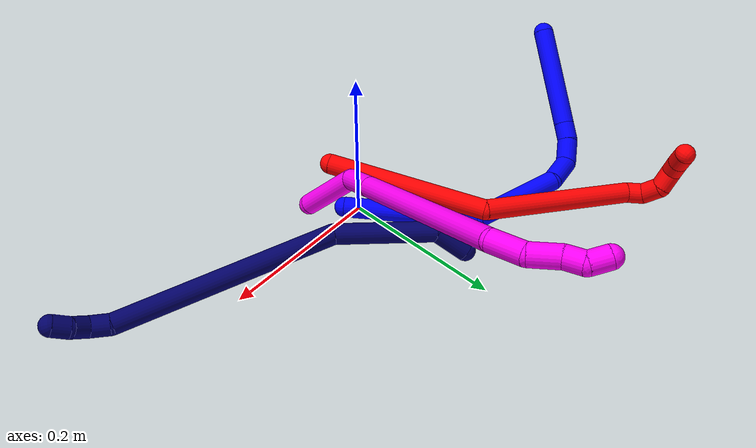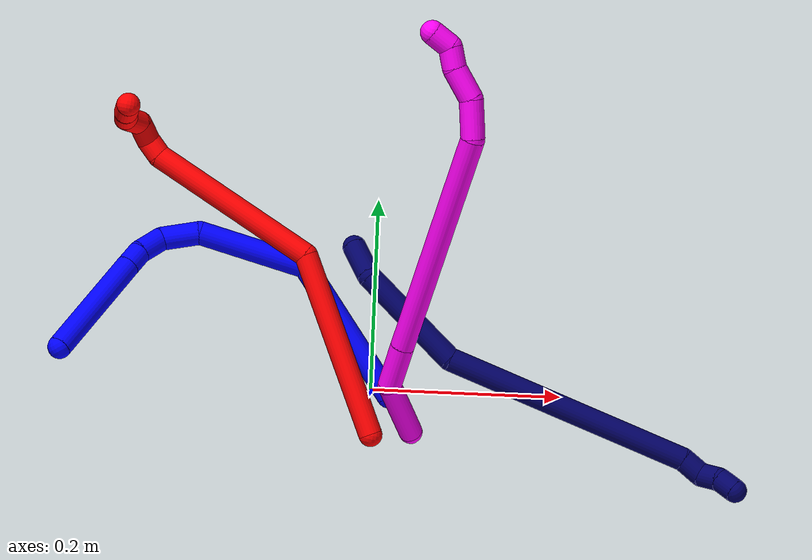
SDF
<sdf version="1.7">
 <world name="default">
  <model name="photoneo_s_sensor">
   <static>1</static>
   <pose>0 0 2 1.57079 1.57079 3.14159</pose>
   <link name="link">
    <inertial><mass>0.1</mass></inertial>
    <sensor name="sensor" type="depth">
     <update_rate>30</update_rate>
     <camera>
      <horizontal_fov>1.22</horizontal_fov>
      <image><width>1920</width><height>1200</height><format>B8G8R8</format></image>
      <clip><near>0.1</near><far>4</far></clip>
      <depth_camera><output>points</output></depth_camera>
     </camera>
     <plugin name="camera_plugin" filename="libgazebo_ros_depth_camera.so">
      <baseline>0.2</baseline>
      <alwaysOn>1</alwaysOn>
      <updateRate>0.0</updateRate>
      <cameraName>camera_ir</cameraName>
      <imageTopicName>/camera/color/image_raw</imageTopicName>
      <cameraInfoTopicName>/camera/color/camera_info</cameraInfoTopicName>
      <depthImageTopicName>/camera/depth/image_raw</depthImageTopicName>
      <depthImageCameraInfoTopicName>/camera/depth/camera_info</depthImageCameraInfoTopicName>
      <pointCloudTopicName>/camera/depth/points</pointCloudTopicName>
      <frameName>fr_optical</frameName>
      <pointCloudCutoff>0.1</pointCloudCutoff>
      <pointCloudCutoffMax>2.0</pointCloudCutoffMax>
      <distortionK1>0</distortionK1>
      <distortionK2>0</distortionK2>
      <distortionK3>0</distortionK3>
      <distortionT1>0</distortionT1>
      <distortionT2>0</distortionT2>
      <CxPrime>0</CxPrime>
      <Cx>0</Cx>
      <Cy>0</Cy>
      <focalLength>0</focalLength>
      <hackBaseline>0</hackBaseline>
     </plugin>
    </sensor>
   </link>
  </model>
  <model name="bin">
   <static>1</static>
   <link name="bottom">
    <collision name="collision-bottom">
     <pose>0 0 -0.01 0 -0 0</pose>
     <geometry><box><size>0.8 0.6 0.02</size></box></geometry>
     <surface>
      <friction><ode><mu>100</mu><mu2>100</mu2></ode></friction>
      <contact><collide_bitmask>65535</collide_bitmask></contact>
     </surface>
    </collision>
   </link>
   <link name="west_wall">
    <collision name="collision-west_wall">
     <pose>-0.41 0 0.1 0 -0 0</pose>
     <geometry><box><size>0.02 0.6 0.2</size></box></geometry>
     <surface>
      <friction><ode><mu>100</mu><mu2>100</mu2></ode></friction>
      <contact><collide_bitmask>65535</collide_bitmask></contact>
     </surface>
    </collision>
   </link>
   <link name="east_wall">
    <collision name="collision-east_wall">
     <pose>0.41 0 0.1 0 -0 0</pose>
     <geometry><box><size>0.02 0.6 0.2</size></box></geometry>
     <surface>
      <friction><ode><mu>100</mu><mu2>100</mu2></ode></friction>
      <contact><collide_bitmask>65535</collide_bitmask></contact>
     </surface>
    </collision>
   </link>
   <link name="south_wall">
    <collision name="collision-south_wall">
     <pose>0 -0.31 0.1 0 -0 0</pose>
     <geometry><box><size>0.8 0.02 0.2</size></box></geometry>
     <surface>
      <friction><ode><mu>100</mu><mu2>100</mu2></ode></friction>
      <contact><collide_bitmask>65535</collide_bitmask></contact>
     </surface>
    </collision>
   </link>
   <link name="north_wall">
    <collision name="collision-north_wall">
     <pose>0 0.31 0.1 0 -0 0</pose>
     <geometry><box><size>0.8 0.02 0.2</size></box></geometry>
     <surface>
      <friction><ode><mu>100</mu><mu2>100</mu2></ode></friction>
      <contact><collide_bitmask>65535</collide_bitmask></contact>
     </surface>
    </collision>
   </link>
  </model>
  <model name="1">
   <static>0</static>
   <link name="1">
    <collision name="collision-cylinder-e_1_1_4">
     <pose>-0.004996 0.004509 0.081183 -0.055489 -0.061371 0.001704</pose>
     <geometry><cylinder><radius>0.0125</radius><length>0.162922</length></cylinder></geometry>
     <surface>
      <friction><ode><mu>1.16</mu><mu2>1.16</mu2><slip1>0</slip1><slip2>0</slip2></ode></friction>
      <contact><ode><kp>1e+06</kp><kd>1</kd><max_vel>0</max_vel><min_depth>0.001</min_depth></ode></contact>
     </surface>
    </collision>
    <visual name="visual-cylinder-e_1_1_4">
     <pose>-0.004996 0.004509 0.081183 -0.055489 -0.061371 0.001704</pose>
     <geometry><cylinder><radius>0.0125</radius><length>0.162922</length></cylinder></geometry>
     <material><ambient>0 0 1 1</ambient></material>
    </visual>
    <collision name="collision-cylinder-e_2_4_5">
     <pose>-0.048579 0.020546 0.204301 -0.268254 -0.725713 0.102373</pose>
     <geometry><cylinder><radius>0.0125</radius><length>0.116283</length></cylinder></geometry>
     <surface>
      <friction><ode><mu>1.16</mu><mu2>1.16</mu2><slip1>0</slip1><slip2>0</slip2></ode></friction>
      <contact><ode><kp>1e+06</kp><kd>1</kd><max_vel>0</max_vel><min_depth>0.001</min_depth></ode></contact>
     </surface>
    </collision>
    <visual name="visual-cylinder-e_2_4_5">
     <pose>-0.048579 0.020546 0.204301 -0.268254 -0.725713 0.102373</pose>
     <geometry><cylinder><radius>0.0125</radius><length>0.116283</length></cylinder></geometry>
     <material><ambient>0 0 1 1</ambient></material>
    </visual>
    <collision name="collision-cylinder-e_3_5_6">
     <pose>-0.105195 0.039379 0.25321 -0.808663 -1.06021 0.491422</pose>
     <geometry><cylinder><radius>0.0125</radius><length>0.041331</length></cylinder></geometry>
     <surface>
      <friction><ode><mu>1.16</mu><mu2>1.16</mu2><slip1>0</slip1><slip2>0</slip2></ode></friction>
      <contact><ode><kp>1e+06</kp><kd>1</kd><max_vel>0</max_vel><min_depth>0.001</min_depth></ode></contact>
     </surface>
    </collision>
    <visual name="visual-cylinder-e_3_5_6">
     <pose>-0.105195 0.039379 0.25321 -0.808663 -1.06021 0.491422</pose>
     <geometry><cylinder><radius>0.0125</radius><length>0.041331</length></cylinder></geometry>
     <material><ambient>0 0 1 1</ambient></material>
    </visual>
    <collision name="collision-cylinder-e_4_6_7">
     <pose>-0.138009 0.042701 0.259517 1.73658 -1.30417 -1.46768</pose>
     <geometry><cylinder><radius>0.0125</radius><length>0.030651</length></cylinder></geometry>
     <surface>
      <friction><ode><mu>1.16</mu><mu2>1.16</mu2><slip1>0</slip1><slip2>0</slip2></ode></friction>
      <contact><ode><kp>1e+06</kp><kd>1</kd><max_vel>0</max_vel><min_depth>0.001</min_depth></ode></contact>
     </surface>
    </collision>
    <visual name="visual-cylinder-e_4_6_7">
     <pose>-0.138009 0.042701 0.259517 1.73658 -1.30417 -1.46768</pose>
     <geometry><cylinder><radius>0.0125</radius><length>0.030651</length></cylinder></geometry>
     <material><ambient>0 0 1 1</ambient></material>
    </visual>
    <collision name="collision-cylinder-e_5_7_8">
     <pose>-0.162678 0.035785 0.255492 2.4236 -1.14702 -2.089</pose>
     <geometry><cylinder><radius>0.0125</radius><length>0.021689</length></cylinder></geometry>
     <surface>
      <friction><ode><mu>1.16</mu><mu2>1.16</mu2><slip1>0</slip1><slip2>0</slip2></ode></friction>
      <contact><ode><kp>1e+06</kp><kd>1</kd><max_vel>0</max_vel><min_depth>0.001</min_depth></ode></contact>
     </surface>
    </collision>
    <visual name="visual-cylinder-e_5_7_8">
     <pose>-0.162678 0.035785 0.255492 2.4236 -1.14702 -2.089</pose>
     <geometry><cylinder><radius>0.0125</radius><length>0.021689</length></cylinder></geometry>
     <material><ambient>0 0 1 1</ambient></material>
    </visual>
    <collision name="collision-cylinder-e_6_8_2">
     <pose>-0.229732 0.013565 0.232137 2.37428 -1.11844 -1.99594</pose>
     <geometry><cylinder><radius>0.0125</radius><length>0.127124</length></cylinder></geometry>
     <surface>
      <friction><ode><mu>1.16</mu><mu2>1.16</mu2><slip1>0</slip1><slip2>0</slip2></ode></friction>
      <contact><ode><kp>1e+06</kp><kd>1</kd><max_vel>0</max_vel><min_depth>0.001</min_depth></ode></contact>
     </surface>
    </collision>
    <visual name="visual-cylinder-e_6_8_2">
     <pose>-0.229732 0.013565 0.232137 2.37428 -1.11844 -1.99594</pose>
     <geometry><cylinder><radius>0.0125</radius><length>0.127124</length></cylinder></geometry>
     <material><ambient>0 0 1 1</ambient></material>
    </visual>
    <collision name="collision-sphere-2">
     <pose>-0.286901 -0.005722 0.21214 0 -0 0</pose>
     <geometry><sphere><radius>0.0125</radius></sphere></geometry>
     <surface>
      <friction><ode><mu>1.16</mu><mu2>1.16</mu2><slip1>0</slip1><slip2>0</slip2></ode></friction>
      <contact><ode><kp>1e+06</kp><kd>1</kd><max_vel>0</max_vel><min_depth>0.001</min_depth></ode></contact>
     </surface>
    </collision>
    <visual name="visual-sphere-2">
     <pose>-0.286901 -0.005722 0.21214 0 -0 0</pose>
     <geometry><sphere><radius>0.0125</radius></sphere></geometry>
     <material><ambient>0 0 1 1</ambient></material>
    </visual>
    <collision name="collision-sphere-4">
     <pose>-0.009992 0.009019 0.162365 0 -0 0</pose>
     <geometry><sphere><radius>0.0125</radius></sphere></geometry>
     <surface>
      <friction><ode><mu>1.16</mu><mu2>1.16</mu2><slip1>0</slip1><slip2>0</slip2></ode></friction>
      <contact><ode><kp>1e+06</kp><kd>1</kd><max_vel>0</max_vel><min_depth>0.001</min_depth></ode></contact>
     </surface>
    </collision>
    <visual name="visual-sphere-4">
     <pose>-0.009992 0.009019 0.162365 0 -0 0</pose>
     <geometry><sphere><radius>0.0125</radius></sphere></geometry>
     <material><ambient>0 0 1 1</ambient></material>
    </visual>
    <collision name="collision-sphere-1">
     <geometry><sphere><radius>0.0125</radius></sphere></geometry>
     <surface>
      <friction><ode><mu>1.16</mu><mu2>1.16</mu2><slip1>0</slip1><slip2>0</slip2></ode></friction>
      <contact><ode><kp>1e+06</kp><kd>1</kd><max_vel>0</max_vel><min_depth>0.001</min_depth></ode></contact>
     </surface>
    </collision>
    <visual name="visual-sphere-1">
     <geometry><sphere><radius>0.0125</radius></sphere></geometry>
     <material><ambient>0 0 1 1</ambient></material>
    </visual>
    <collision name="collision-sphere-8">
     <pose>-0.172564 0.032851 0.252133 0 -0 0</pose>
     <geometry><sphere><radius>0.0125</radius></sphere></geometry>
     <surface>
      <friction><ode><mu>1.16</mu><mu2>1.16</mu2><slip1>0</slip1><slip2>0</slip2></ode></friction>
      <contact><ode><kp>1e+06</kp><kd>1</kd><max_vel>0</max_vel><min_depth>0.001</min_depth></ode></contact>
     </surface>
    </collision>
    <visual name="visual-sphere-8">
     <pose>-0.172564 0.032851 0.252133 0 -0 0</pose>
     <geometry><sphere><radius>0.0125</radius></sphere></geometry>
     <material><ambient>0 0 1 1</ambient></material>
    </visual>
    <collision name="collision-sphere-5">
     <pose>-0.087166 0.032073 0.246237 0 -0 0</pose>
     <geometry><sphere><radius>0.0125</radius></sphere></geometry>
     <surface>
      <friction><ode><mu>1.16</mu><mu2>1.16</mu2><slip1>0</slip1><slip2>0</slip2></ode></friction>
      <contact><ode><kp>1e+06</kp><kd>1</kd><max_vel>0</max_vel><min_depth>0.001</min_depth></ode></contact>
     </surface>
    </collision>
    <visual name="visual-sphere-5">
     <pose>-0.087166 0.032073 0.246237 0 -0 0</pose>
     <geometry><sphere><radius>0.0125</radius></sphere></geometry>
     <material><ambient>0 0 1 1</ambient></material>
    </visual>
    <collision name="collision-sphere-6">
     <pose>-0.123225 0.046684 0.260183 0 -0 0</pose>
     <geometry><sphere><radius>0.0125</radius></sphere></geometry>
     <surface>
      <friction><ode><mu>1.16</mu><mu2>1.16</mu2><slip1>0</slip1><slip2>0</slip2></ode></friction>
      <contact><ode><kp>1e+06</kp><kd>1</kd><max_vel>0</max_vel><min_depth>0.001</min_depth></ode></contact>
     </surface>
    </collision>
    <visual name="visual-sphere-6">
     <pose>-0.123225 0.046684 0.260183 0 -0 0</pose>
     <geometry><sphere><radius>0.0125</radius></sphere></geometry>
     <material><ambient>0 0 1 1</ambient></material>
    </visual>
    <collision name="collision-sphere-7">
     <pose>-0.152793 0.038719 0.25885 0 -0 0</pose>
     <geometry><sphere><radius>0.0125</radius></sphere></geometry>
     <surface>
      <friction><ode><mu>1.16</mu><mu2>1.16</mu2><slip1>0</slip1><slip2>0</slip2></ode></friction>
      <contact><ode><kp>1e+06</kp><kd>1</kd><max_vel>0</max_vel><min_depth>0.001</min_depth></ode></contact>
     </surface>
    </collision>
    <visual name="visual-sphere-7">
     <pose>-0.152793 0.038719 0.25885 0 -0 0</pose>
     <geometry><sphere><radius>0.0125</radius></sphere></geometry>
     <material><ambient>0 0 1 1</ambient></material>
    </visual>
    <inertial>
     <pose>-0.095547 0.017122 0.180909 0 -0 0</pose>
     <mass>0.5</mass>
     <inertia>
      <ixx>0.000357</ixx>
      <ixy>0</ixy>
      <ixz>0</ixz>
      <iyy>0.000603</iyy>
      <iyz>0</iyz>
      <izz>0.000304</izz>
     </inertia>
    </inertial>
   </link>
   <pose>0.018815 -0.005978 0.011493 -1.53435 0.300577 0.547363</pose>
  </model>
  <model name="2">
   <static>0</static>
   <link name="2">
    <collision name="collision-cylinder-e_1_1_4">
     <pose>-0.027704 0.045002 0.084976 -0.487036 -0.280519 0.070126</pose>
     <geometry><cylinder><radius>0.0125</radius><length>0.200136</length></cylinder></geometry>
     <surface>
      <friction><ode><mu>1.16</mu><mu2>1.16</mu2><slip1>0</slip1><slip2>0</slip2></ode></friction>
      <contact><ode><kp>1e+06</kp><kd>1</kd><max_vel>0</max_vel><min_depth>0.001</min_depth></ode></contact>
     </surface>
    </collision>
    <visual name="visual-cylinder-e_1_1_4">
     <pose>-0.027704 0.045002 0.084976 -0.487036 -0.280519 0.070126</pose>
     <geometry><cylinder><radius>0.0125</radius><length>0.200136</length></cylinder></geometry>
     <material><ambient>1 0 0 1</ambient></material>
    </visual>
    <collision name="collision-cylinder-e_2_4_5">
     <pose>-0.101498 0.164231 0.205125 -1.12828 -0.511342 0.327814</pose>
     <geometry><cylinder><radius>0.0125</radius><length>0.188374</length></cylinder></geometry>
     <surface>
      <friction><ode><mu>1.16</mu><mu2>1.16</mu2><slip1>0</slip1><slip2>0</slip2></ode></friction>
      <contact><ode><kp>1e+06</kp><kd>1</kd><max_vel>0</max_vel><min_depth>0.001</min_depth></ode></contact>
     </surface>
    </collision>
    <visual name="visual-cylinder-e_2_4_5">
     <pose>-0.101498 0.164231 0.205125 -1.12828 -0.511342 0.327814</pose>
     <geometry><cylinder><radius>0.0125</radius><length>0.188374</length></cylinder></geometry>
     <material><ambient>1 0 0 1</ambient></material>
    </visual>
    <collision name="collision-cylinder-e_3_5_6">
     <pose>-0.152165 0.244524 0.247315 -0.712796 -0.458345 0.173257</pose>
     <geometry><cylinder><radius>0.0125</radius><length>0.020685</length></cylinder></geometry>
     <surface>
      <friction><ode><mu>1.16</mu><mu2>1.16</mu2><slip1>0</slip1><slip2>0</slip2></ode></friction>
      <contact><ode><kp>1e+06</kp><kd>1</kd><max_vel>0</max_vel><min_depth>0.001</min_depth></ode></contact>
     </surface>
    </collision>
    <visual name="visual-cylinder-e_3_5_6">
     <pose>-0.152165 0.244524 0.247315 -0.712796 -0.458345 0.173257</pose>
     <geometry><cylinder><radius>0.0125</radius><length>0.020685</length></cylinder></geometry>
     <material><ambient>1 0 0 1</ambient></material>
    </visual>
    <collision name="collision-cylinder-e_4_6_7">
     <pose>-0.166487 0.249707 0.262303 0.110255 -0.882244 -0.052098</pose>
     <geometry><cylinder><radius>0.0125</radius><length>0.025244</length></cylinder></geometry>
     <surface>
      <friction><ode><mu>1.16</mu><mu2>1.16</mu2><slip1>0</slip1><slip2>0</slip2></ode></friction>
      <contact><ode><kp>1e+06</kp><kd>1</kd><max_vel>0</max_vel><min_depth>0.001</min_depth></ode></contact>
     </surface>
    </collision>
    <visual name="visual-cylinder-e_4_6_7">
     <pose>-0.166487 0.249707 0.262303 0.110255 -0.882244 -0.052098</pose>
     <geometry><cylinder><radius>0.0125</radius><length>0.025244</length></cylinder></geometry>
     <material><ambient>1 0 0 1</ambient></material>
    </visual>
    <collision name="collision-cylinder-e_5_7_8">
     <pose>-0.188007 0.248131 0.270973 0.782014 -1.48737 -0.724895</pose>
     <geometry><cylinder><radius>0.0125</radius><length>0.02363</length></cylinder></geometry>
     <surface>
      <friction><ode><mu>1.16</mu><mu2>1.16</mu2><slip1>0</slip1><slip2>0</slip2></ode></friction>
      <contact><ode><kp>1e+06</kp><kd>1</kd><max_vel>0</max_vel><min_depth>0.001</min_depth></ode></contact>
     </surface>
    </collision>
    <visual name="visual-cylinder-e_5_7_8">
     <pose>-0.188007 0.248131 0.270973 0.782014 -1.48737 -0.724895</pose>
     <geometry><cylinder><radius>0.0125</radius><length>0.02363</length></cylinder></geometry>
     <material><ambient>1 0 0 1</ambient></material>
    </visual>
    <collision name="collision-cylinder-e_6_8_9">
     <pose>-0.207148 0.241303 0.274686 1.11409 -0.822869 -0.530721</pose>
     <geometry><cylinder><radius>0.0125</radius><length>0.020097</length></cylinder></geometry>
     <surface>
      <friction><ode><mu>1.16</mu><mu2>1.16</mu2><slip1>0</slip1><slip2>0</slip2></ode></friction>
      <contact><ode><kp>1e+06</kp><kd>1</kd><max_vel>0</max_vel><min_depth>0.001</min_depth></ode></contact>
     </surface>
    </collision>
    <visual name="visual-cylinder-e_6_8_9">
     <pose>-0.207148 0.241303 0.274686 1.11409 -0.822869 -0.530721</pose>
     <geometry><cylinder><radius>0.0125</radius><length>0.020097</length></cylinder></geometry>
     <material><ambient>1 0 0 1</ambient></material>
    </visual>
    <collision name="collision-cylinder-e_7_9_2">
     <pose>-0.221535 0.22785 0.281741 1.06626 -0.698459 -0.423357</pose>
     <geometry><cylinder><radius>0.0125</radius><length>0.021835</length></cylinder></geometry>
     <surface>
      <friction><ode><mu>1.16</mu><mu2>1.16</mu2><slip1>0</slip1><slip2>0</slip2></ode></friction>
      <contact><ode><kp>1e+06</kp><kd>1</kd><max_vel>0</max_vel><min_depth>0.001</min_depth></ode></contact>
     </surface>
    </collision>
    <visual name="visual-cylinder-e_7_9_2">
     <pose>-0.221535 0.22785 0.281741 1.06626 -0.698459 -0.423357</pose>
     <geometry><cylinder><radius>0.0125</radius><length>0.021835</length></cylinder></geometry>
     <material><ambient>1 0 0 1</ambient></material>
    </visual>
    <collision name="collision-sphere-2">
     <pose>-0.228555 0.220531 0.285783 0 -0 0</pose>
     <geometry><sphere><radius>0.0125</radius></sphere></geometry>
     <surface>
      <friction><ode><mu>1.16</mu><mu2>1.16</mu2><slip1>0</slip1><slip2>0</slip2></ode></friction>
      <contact><ode><kp>1e+06</kp><kd>1</kd><max_vel>0</max_vel><min_depth>0.001</min_depth></ode></contact>
     </surface>
    </collision>
    <visual name="visual-sphere-2">
     <pose>-0.228555 0.220531 0.285783 0 -0 0</pose>
     <geometry><sphere><radius>0.0125</radius></sphere></geometry>
     <material><ambient>1 0 0 1</ambient></material>
    </visual>
    <collision name="collision-sphere-9">
     <pose>-0.214515 0.235169 0.2777 0 -0 0</pose>
     <geometry><sphere><radius>0.0125</radius></sphere></geometry>
     <surface>
      <friction><ode><mu>1.16</mu><mu2>1.16</mu2><slip1>0</slip1><slip2>0</slip2></ode></friction>
      <contact><ode><kp>1e+06</kp><kd>1</kd><max_vel>0</max_vel><min_depth>0.001</min_depth></ode></contact>
     </surface>
    </collision>
    <visual name="visual-sphere-9">
     <pose>-0.214515 0.235169 0.2777 0 -0 0</pose>
     <geometry><sphere><radius>0.0125</radius></sphere></geometry>
     <material><ambient>1 0 0 1</ambient></material>
    </visual>
    <collision name="collision-sphere-4">
     <pose>-0.055408 0.090004 0.169951 0 -0 0</pose>
     <geometry><sphere><radius>0.0125</radius></sphere></geometry>
     <surface>
      <friction><ode><mu>1.16</mu><mu2>1.16</mu2><slip1>0</slip1><slip2>0</slip2></ode></friction>
      <contact><ode><kp>1e+06</kp><kd>1</kd><max_vel>0</max_vel><min_depth>0.001</min_depth></ode></contact>
     </surface>
    </collision>
    <visual name="visual-sphere-4">
     <pose>-0.055408 0.090004 0.169951 0 -0 0</pose>
     <geometry><sphere><radius>0.0125</radius></sphere></geometry>
     <material><ambient>1 0 0 1</ambient></material>
    </visual>
    <collision name="collision-sphere-1">
     <geometry><sphere><radius>0.0125</radius></sphere></geometry>
     <surface>
      <friction><ode><mu>1.16</mu><mu2>1.16</mu2><slip1>0</slip1><slip2>0</slip2></ode></friction>
      <contact><ode><kp>1e+06</kp><kd>1</kd><max_vel>0</max_vel><min_depth>0.001</min_depth></ode></contact>
     </surface>
    </collision>
    <visual name="visual-sphere-1">
     <geometry><sphere><radius>0.0125</radius></sphere></geometry>
     <material><ambient>1 0 0 1</ambient></material>
    </visual>
    <collision name="collision-sphere-8">
     <pose>-0.199781 0.247437 0.271672 0 -0 0</pose>
     <geometry><sphere><radius>0.0125</radius></sphere></geometry>
     <surface>
      <friction><ode><mu>1.16</mu><mu2>1.16</mu2><slip1>0</slip1><slip2>0</slip2></ode></friction>
      <contact><ode><kp>1e+06</kp><kd>1</kd><max_vel>0</max_vel><min_depth>0.001</min_depth></ode></contact>
     </surface>
    </collision>
    <visual name="visual-sphere-8">
     <pose>-0.199781 0.247437 0.271672 0 -0 0</pose>
     <geometry><sphere><radius>0.0125</radius></sphere></geometry>
     <material><ambient>1 0 0 1</ambient></material>
    </visual>
    <collision name="collision-sphere-5">
     <pose>-0.147589 0.238459 0.240298 0 -0 0</pose>
     <geometry><sphere><radius>0.0125</radius></sphere></geometry>
     <surface>
      <friction><ode><mu>1.16</mu><mu2>1.16</mu2><slip1>0</slip1><slip2>0</slip2></ode></friction>
      <contact><ode><kp>1e+06</kp><kd>1</kd><max_vel>0</max_vel><min_depth>0.001</min_depth></ode></contact>
     </surface>
    </collision>
    <visual name="visual-sphere-5">
     <pose>-0.147589 0.238459 0.240298 0 -0 0</pose>
     <geometry><sphere><radius>0.0125</radius></sphere></geometry>
     <material><ambient>1 0 0 1</ambient></material>
    </visual>
    <collision name="collision-sphere-6">
     <pose>-0.156741 0.250589 0.254331 0 -0 0</pose>
     <geometry><sphere><radius>0.0125</radius></sphere></geometry>
     <surface>
      <friction><ode><mu>1.16</mu><mu2>1.16</mu2><slip1>0</slip1><slip2>0</slip2></ode></friction>
      <contact><ode><kp>1e+06</kp><kd>1</kd><max_vel>0</max_vel><min_depth>0.001</min_depth></ode></contact>
     </surface>
    </collision>
    <visual name="visual-sphere-6">
     <pose>-0.156741 0.250589 0.254331 0 -0 0</pose>
     <geometry><sphere><radius>0.0125</radius></sphere></geometry>
     <material><ambient>1 0 0 1</ambient></material>
    </visual>
    <collision name="collision-sphere-7">
     <pose>-0.176234 0.248824 0.270275 0 -0 0</pose>
     <geometry><sphere><radius>0.0125</radius></sphere></geometry>
     <surface>
      <friction><ode><mu>1.16</mu><mu2>1.16</mu2><slip1>0</slip1><slip2>0</slip2></ode></friction>
      <contact><ode><kp>1e+06</kp><kd>1</kd><max_vel>0</max_vel><min_depth>0.001</min_depth></ode></contact>
     </surface>
    </collision>
    <visual name="visual-sphere-7">
     <pose>-0.176234 0.248824 0.270275 0 -0 0</pose>
     <geometry><sphere><radius>0.0125</radius></sphere></geometry>
     <material><ambient>1 0 0 1</ambient></material>
    </visual>
    <inertial>
     <pose>-0.090915 0.133986 0.170918 0 -0 0</pose>
     <mass>0.5</mass>
     <inertia>
      <ixx>0.001304</ixx>
      <ixy>0</ixy>
      <ixz>0</ixz>
      <iyy>0.001139</iyy>
      <iyz>0</iyz>
      <izz>-0.000255</izz>
     </inertia>
    </inertial>
   </link>
   <pose>0.001478 -0.045863 0.047006 -1.54454 0.879819 -0.145023</pose>
  </model>
  <model name="7">
   <static>0</static>
   <link name="7">
    <collision name="collision-cylinder-e_1_1_4">
     <pose>0.003093 -0.019524 -0.007951 1.95754 0.145685 0.216172</pose>
     <geometry><cylinder><radius>0.0125</radius><length>0.042614</length></cylinder></geometry>
     <surface>
      <friction><ode><mu>1.16</mu><mu2>1.16</mu2><slip1>0</slip1><slip2>0</slip2></ode></friction>
      <contact><ode><kp>1e+06</kp><kd>1</kd><max_vel>0</max_vel><min_depth>0.001</min_depth></ode></contact>
     </surface>
    </collision>
    <visual name="visual-cylinder-e_1_1_4">
     <pose>0.003093 -0.019524 -0.007951 1.95754 0.145685 0.216172</pose>
     <geometry><cylinder><radius>0.0125</radius><length>0.042614</length></cylinder></geometry>
     <material><ambient>0.003922 0 0.403922 1</ambient></material>
    </visual>
    <collision name="collision-cylinder-e_2_4_5">
     <pose>0.027025 -0.069342 -0.06388 2.5784 0.351975 1.10234</pose>
     <geometry><cylinder><radius>0.0125</radius><length>0.120894</length></cylinder></geometry>
     <surface>
      <friction><ode><mu>1.16</mu><mu2>1.16</mu2><slip1>0</slip1><slip2>0</slip2></ode></friction>
      <contact><ode><kp>1e+06</kp><kd>1</kd><max_vel>0</max_vel><min_depth>0.001</min_depth></ode></contact>
     </surface>
    </collision>
    <visual name="visual-cylinder-e_2_4_5">
     <pose>0.027025 -0.069342 -0.06388 2.5784 0.351975 1.10234</pose>
     <geometry><cylinder><radius>0.0125</radius><length>0.120894</length></cylinder></geometry>
     <material><ambient>0.003922 0 0.403922 1</ambient></material>
    </visual>
    <collision name="collision-cylinder-e_3_5_6">
     <pose>0.13532 -0.134009 -0.207045 2.79504 0.712654 2.26248</pose>
     <geometry><cylinder><radius>0.0125</radius><length>0.26751</length></cylinder></geometry>
     <surface>
      <friction><ode><mu>1.16</mu><mu2>1.16</mu2><slip1>0</slip1><slip2>0</slip2></ode></friction>
      <contact><ode><kp>1e+06</kp><kd>1</kd><max_vel>0</max_vel><min_depth>0.001</min_depth></ode></contact>
     </surface>
    </collision>
    <visual name="visual-cylinder-e_3_5_6">
     <pose>0.13532 -0.134009 -0.207045 2.79504 0.712654 2.26248</pose>
     <geometry><cylinder><radius>0.0125</radius><length>0.26751</length></cylinder></geometry>
     <material><ambient>0.003922 0 0.403922 1</ambient></material>
    </visual>
    <collision name="collision-cylinder-e_4_6_7">
     <pose>0.227998 -0.174065 -0.311901 2.61037 0.435866 1.36649</pose>
     <geometry><cylinder><radius>0.0125</radius><length>0.024744</length></cylinder></geometry>
     <surface>
      <friction><ode><mu>1.16</mu><mu2>1.16</mu2><slip1>0</slip1><slip2>0</slip2></ode></friction>
      <contact><ode><kp>1e+06</kp><kd>1</kd><max_vel>0</max_vel><min_depth>0.001</min_depth></ode></contact>
     </surface>
    </collision>
    <visual name="visual-cylinder-e_4_6_7">
     <pose>0.227998 -0.174065 -0.311901 2.61037 0.435866 1.36649</pose>
     <geometry><cylinder><radius>0.0125</radius><length>0.024744</length></cylinder></geometry>
     <material><ambient>0.003922 0 0.403922 1</ambient></material>
    </visual>
    <collision name="collision-cylinder-e_5_7_8">
     <pose>0.241846 -0.187092 -0.323642 1.84567 0.846341 1.07341</pose>
     <geometry><cylinder><radius>0.0125</radius><length>0.023034</length></cylinder></geometry>
     <surface>
      <friction><ode><mu>1.16</mu><mu2>1.16</mu2><slip1>0</slip1><slip2>0</slip2></ode></friction>
      <contact><ode><kp>1e+06</kp><kd>1</kd><max_vel>0</max_vel><min_depth>0.001</min_depth></ode></contact>
     </surface>
    </collision>
    <visual name="visual-cylinder-e_5_7_8">
     <pose>0.241846 -0.187092 -0.323642 1.84567 0.846341 1.07341</pose>
     <geometry><cylinder><radius>0.0125</radius><length>0.023034</length></cylinder></geometry>
     <material><ambient>0.003922 0 0.403922 1</ambient></material>
    </visual>
    <collision name="collision-cylinder-e_6_8_2">
     <pose>0.255882 -0.202096 -0.330663 2.14454 0.535644 0.933809</pose>
     <geometry><cylinder><radius>0.0125</radius><length>0.021204</length></cylinder></geometry>
     <surface>
      <friction><ode><mu>1.16</mu><mu2>1.16</mu2><slip1>0</slip1><slip2>0</slip2></ode></friction>
      <contact><ode><kp>1e+06</kp><kd>1</kd><max_vel>0</max_vel><min_depth>0.001</min_depth></ode></contact>
     </surface>
    </collision>
    <visual name="visual-cylinder-e_6_8_2">
     <pose>0.255882 -0.202096 -0.330663 2.14454 0.535644 0.933809</pose>
     <geometry><cylinder><radius>0.0125</radius><length>0.021204</length></cylinder></geometry>
     <material><ambient>0.003922 0 0.403922 1</ambient></material>
    </visual>
    <collision name="collision-sphere-2">
     <pose>0.261293 -0.209753 -0.335611 0 -0 0</pose>
     <geometry><sphere><radius>0.0125</radius></sphere></geometry>
     <surface>
      <friction><ode><mu>1.16</mu><mu2>1.16</mu2><slip1>0</slip1><slip2>0</slip2></ode></friction>
      <contact><ode><kp>1e+06</kp><kd>1</kd><max_vel>0</max_vel><min_depth>0.001</min_depth></ode></contact>
     </surface>
    </collision>
    <visual name="visual-sphere-2">
     <pose>0.261293 -0.209753 -0.335611 0 -0 0</pose>
     <geometry><sphere><radius>0.0125</radius></sphere></geometry>
     <material><ambient>0.003922 0 0.403922 1</ambient></material>
    </visual>
    <collision name="collision-sphere-4">
     <pose>0.006186 -0.039049 -0.015903 0 -0 0</pose>
     <geometry><sphere><radius>0.0125</radius></sphere></geometry>
     <surface>
      <friction><ode><mu>1.16</mu><mu2>1.16</mu2><slip1>0</slip1><slip2>0</slip2></ode></friction>
      <contact><ode><kp>1e+06</kp><kd>1</kd><max_vel>0</max_vel><min_depth>0.001</min_depth></ode></contact>
     </surface>
    </collision>
    <visual name="visual-sphere-4">
     <pose>0.006186 -0.039049 -0.015903 0 -0 0</pose>
     <geometry><sphere><radius>0.0125</radius></sphere></geometry>
     <material><ambient>0.003922 0 0.403922 1</ambient></material>
    </visual>
    <collision name="collision-sphere-1">
     <geometry><sphere><radius>0.0125</radius></sphere></geometry>
     <surface>
      <friction><ode><mu>1.16</mu><mu2>1.16</mu2><slip1>0</slip1><slip2>0</slip2></ode></friction>
      <contact><ode><kp>1e+06</kp><kd>1</kd><max_vel>0</max_vel><min_depth>0.001</min_depth></ode></contact>
     </surface>
    </collision>
    <visual name="visual-sphere-1">
     <geometry><sphere><radius>0.0125</radius></sphere></geometry>
     <material><ambient>0.003922 0 0.403922 1</ambient></material>
    </visual>
    <collision name="collision-sphere-8">
     <pose>0.250471 -0.194439 -0.325714 0 -0 0</pose>
     <geometry><sphere><radius>0.0125</radius></sphere></geometry>
     <surface>
      <friction><ode><mu>1.16</mu><mu2>1.16</mu2><slip1>0</slip1><slip2>0</slip2></ode></friction>
      <contact><ode><kp>1e+06</kp><kd>1</kd><max_vel>0</max_vel><min_depth>0.001</min_depth></ode></contact>
     </surface>
    </collision>
    <visual name="visual-sphere-8">
     <pose>0.250471 -0.194439 -0.325714 0 -0 0</pose>
     <geometry><sphere><radius>0.0125</radius></sphere></geometry>
     <material><ambient>0.003922 0 0.403922 1</ambient></material>
    </visual>
    <collision name="collision-sphere-5">
     <pose>0.047865 -0.099635 -0.111858 0 -0 0</pose>
     <geometry><sphere><radius>0.0125</radius></sphere></geometry>
     <surface>
      <friction><ode><mu>1.16</mu><mu2>1.16</mu2><slip1>0</slip1><slip2>0</slip2></ode></friction>
      <contact><ode><kp>1e+06</kp><kd>1</kd><max_vel>0</max_vel><min_depth>0.001</min_depth></ode></contact>
     </surface>
    </collision>
    <visual name="visual-sphere-5">
     <pose>0.047865 -0.099635 -0.111858 0 -0 0</pose>
     <geometry><sphere><radius>0.0125</radius></sphere></geometry>
     <material><ambient>0.003922 0 0.403922 1</ambient></material>
    </visual>
    <collision name="collision-sphere-6">
     <pose>0.222775 -0.168383 -0.302231 0 -0 0</pose>
     <geometry><sphere><radius>0.0125</radius></sphere></geometry>
     <surface>
      <friction><ode><mu>1.16</mu><mu2>1.16</mu2><slip1>0</slip1><slip2>0</slip2></ode></friction>
      <contact><ode><kp>1e+06</kp><kd>1</kd><max_vel>0</max_vel><min_depth>0.001</min_depth></ode></contact>
     </surface>
    </collision>
    <visual name="visual-sphere-6">
     <pose>0.222775 -0.168383 -0.302231 0 -0 0</pose>
     <geometry><sphere><radius>0.0125</radius></sphere></geometry>
     <material><ambient>0.003922 0 0.403922 1</ambient></material>
    </visual>
    <collision name="collision-sphere-7">
     <pose>0.233221 -0.179746 -0.321571 0 -0 0</pose>
     <geometry><sphere><radius>0.0125</radius></sphere></geometry>
     <surface>
      <friction><ode><mu>1.16</mu><mu2>1.16</mu2><slip1>0</slip1><slip2>0</slip2></ode></friction>
      <contact><ode><kp>1e+06</kp><kd>1</kd><max_vel>0</max_vel><min_depth>0.001</min_depth></ode></contact>
     </surface>
    </collision>
    <visual name="visual-sphere-7">
     <pose>0.233221 -0.179746 -0.321571 0 -0 0</pose>
     <geometry><sphere><radius>0.0125</radius></sphere></geometry>
     <material><ambient>0.003922 0 0.403922 1</ambient></material>
    </visual>
    <inertial>
     <pose>0.112473 -0.115931 -0.171264 0 -0 0</pose>
     <mass>0.5</mass>
     <inertia>
      <ixx>0.000389</ixx>
      <ixy>0</ixy>
      <ixz>0</ixz>
      <iyy>0.002256</iyy>
      <iyz>0</iyz>
      <izz>-0.000633</izz>
     </inertia>
    </inertial>
   </link>
   <pose>-0.023591 0.149949 0.012215 -0.990713 -0.181703 0.463216</pose>
  </model>
  <model name="10">
   <static>0</static>
   <link name="10">
    <collision name="collision-cylinder-e_1_1_4">
     <pose>-0.01755 -0.00149 0.035739 0.041667 -0.456129 -0.009672</pose>
     <geometry><cylinder><radius>0.0125</radius><length>0.079687</length></cylinder></geometry>
     <surface>
      <friction><ode><mu>1.16</mu><mu2>1.16</mu2><slip1>0</slip1><slip2>0</slip2></ode></friction>
      <contact><ode><kp>1e+06</kp><kd>1</kd><max_vel>0</max_vel><min_depth>0.001</min_depth></ode></contact>
     </surface>
    </collision>
    <visual name="visual-cylinder-e_1_1_4">
     <pose>-0.01755 -0.00149 0.035739 0.041667 -0.456129 -0.009672</pose>
     <geometry><cylinder><radius>0.0125</radius><length>0.079687</length></cylinder></geometry>
     <material><ambient>1 0 0.964706 1</ambient></material>
    </visual>
    <collision name="collision-cylinder-e_2_4_5">
     <pose>-0.031699 0.002912 0.09501 -0.245337 0.139313 -0.017203</pose>
     <geometry><cylinder><radius>0.0125</radius><length>0.04899</length></cylinder></geometry>
     <surface>
      <friction><ode><mu>1.16</mu><mu2>1.16</mu2><slip1>0</slip1><slip2>0</slip2></ode></friction>
      <contact><ode><kp>1e+06</kp><kd>1</kd><max_vel>0</max_vel><min_depth>0.001</min_depth></ode></contact>
     </surface>
    </collision>
    <visual name="visual-cylinder-e_2_4_5">
     <pose>-0.031699 0.002912 0.09501 -0.245337 0.139313 -0.017203</pose>
     <geometry><cylinder><radius>0.0125</radius><length>0.04899</length></cylinder></geometry>
     <material><ambient>1 0 0.964706 1</ambient></material>
    </visual>
    <collision name="collision-cylinder-e_3_5_6">
     <pose>-0.009668 0.03893 0.23851 -0.246034 0.149482 -0.018516</pose>
     <geometry><cylinder><radius>0.0125</radius><length>0.250177</length></cylinder></geometry>
     <surface>
      <friction><ode><mu>1.16</mu><mu2>1.16</mu2><slip1>0</slip1><slip2>0</slip2></ode></friction>
      <contact><ode><kp>1e+06</kp><kd>1</kd><max_vel>0</max_vel><min_depth>0.001</min_depth></ode></contact>
     </surface>
    </collision>
    <visual name="visual-cylinder-e_3_5_6">
     <pose>-0.009668 0.03893 0.23851 -0.246034 0.149482 -0.018516</pose>
     <geometry><cylinder><radius>0.0125</radius><length>0.250177</length></cylinder></geometry>
     <material><ambient>1 0 0.964706 1</ambient></material>
    </visual>
    <collision name="collision-cylinder-e_4_6_7">
     <pose>0.006407 0.080883 0.374814 -0.626598 -0.12596 0.040855</pose>
     <geometry><cylinder><radius>0.0125</radius><length>0.040655</length></cylinder></geometry>
     <surface>
      <friction><ode><mu>1.16</mu><mu2>1.16</mu2><slip1>0</slip1><slip2>0</slip2></ode></friction>
      <contact><ode><kp>1e+06</kp><kd>1</kd><max_vel>0</max_vel><min_depth>0.001</min_depth></ode></contact>
     </surface>
    </collision>
    <visual name="visual-cylinder-e_4_6_7">
     <pose>0.006407 0.080883 0.374814 -0.626598 -0.12596 0.040855</pose>
     <geometry><cylinder><radius>0.0125</radius><length>0.040655</length></cylinder></geometry>
     <material><ambient>1 0 0.964706 1</ambient></material>
    </visual>
    <collision name="collision-cylinder-e_5_7_8">
     <pose>-0.005543 0.102766 0.401827 -0.755534 -0.569696 0.231352</pose>
     <geometry><cylinder><radius>0.0125</radius><length>0.034839</length></cylinder></geometry>
     <surface>
      <friction><ode><mu>1.16</mu><mu2>1.16</mu2><slip1>0</slip1><slip2>0</slip2></ode></friction>
      <contact><ode><kp>1e+06</kp><kd>1</kd><max_vel>0</max_vel><min_depth>0.001</min_depth></ode></contact>
     </surface>
    </collision>
    <visual name="visual-cylinder-e_5_7_8">
     <pose>-0.005543 0.102766 0.401827 -0.755534 -0.569696 0.231352</pose>
     <geometry><cylinder><radius>0.0125</radius><length>0.034839</length></cylinder></geometry>
     <material><ambient>1 0 0.964706 1</ambient></material>
    </visual>
    <collision name="collision-cylinder-e_6_8_9">
     <pose>-0.017855 0.119806 0.420813 -0.698797 -0.262499 0.09612</pose>
     <geometry><cylinder><radius>0.0125</radius><length>0.022477</length></cylinder></geometry>
     <surface>
      <friction><ode><mu>1.16</mu><mu2>1.16</mu2><slip1>0</slip1><slip2>0</slip2></ode></friction>
      <contact><ode><kp>1e+06</kp><kd>1</kd><max_vel>0</max_vel><min_depth>0.001</min_depth></ode></contact>
     </surface>
    </collision>
    <visual name="visual-cylinder-e_6_8_9">
     <pose>-0.017855 0.119806 0.420813 -0.698797 -0.262499 0.09612</pose>
     <geometry><cylinder><radius>0.0125</radius><length>0.022477</length></cylinder></geometry>
     <material><ambient>1 0 0.964706 1</ambient></material>
    </visual>
    <collision name="collision-cylinder-e_7_9_2">
     <pose>-0.03034 0.131189 0.433953 -0.739 -0.971668 0.403451</pose>
     <geometry><cylinder><radius>0.0125</radius><length>0.023174</length></cylinder></geometry>
     <surface>
      <friction><ode><mu>1.16</mu><mu2>1.16</mu2><slip1>0</slip1><slip2>0</slip2></ode></friction>
      <contact><ode><kp>1e+06</kp><kd>1</kd><max_vel>0</max_vel><min_depth>0.001</min_depth></ode></contact>
     </surface>
    </collision>
    <visual name="visual-cylinder-e_7_9_2">
     <pose>-0.03034 0.131189 0.433953 -0.739 -0.971668 0.403451</pose>
     <geometry><cylinder><radius>0.0125</radius><length>0.023174</length></cylinder></geometry>
     <material><ambient>1 0 0.964706 1</ambient></material>
    </visual>
    <collision name="collision-sphere-2">
     <pose>-0.039909 0.13559 0.438782 0 -0 0</pose>
     <geometry><sphere><radius>0.0125</radius></sphere></geometry>
     <surface>
      <friction><ode><mu>1.16</mu><mu2>1.16</mu2><slip1>0</slip1><slip2>0</slip2></ode></friction>
      <contact><ode><kp>1e+06</kp><kd>1</kd><max_vel>0</max_vel><min_depth>0.001</min_depth></ode></contact>
     </surface>
    </collision>
    <visual name="visual-sphere-2">
     <pose>-0.039909 0.13559 0.438782 0 -0 0</pose>
     <geometry><sphere><radius>0.0125</radius></sphere></geometry>
     <material><ambient>1 0 0.964706 1</ambient></material>
    </visual>
    <collision name="collision-sphere-9">
     <pose>-0.020771 0.126788 0.429123 0 -0 0</pose>
     <geometry><sphere><radius>0.0125</radius></sphere></geometry>
     <surface>
      <friction><ode><mu>1.16</mu><mu2>1.16</mu2><slip1>0</slip1><slip2>0</slip2></ode></friction>
      <contact><ode><kp>1e+06</kp><kd>1</kd><max_vel>0</max_vel><min_depth>0.001</min_depth></ode></contact>
     </surface>
    </collision>
    <visual name="visual-sphere-9">
     <pose>-0.020771 0.126788 0.429123 0 -0 0</pose>
     <geometry><sphere><radius>0.0125</radius></sphere></geometry>
     <material><ambient>1 0 0.964706 1</ambient></material>
    </visual>
    <collision name="collision-sphere-4">
     <pose>-0.0351 -0.00298 0.071478 0 -0 0</pose>
     <geometry><sphere><radius>0.0125</radius></sphere></geometry>
     <surface>
      <friction><ode><mu>1.16</mu><mu2>1.16</mu2><slip1>0</slip1><slip2>0</slip2></ode></friction>
      <contact><ode><kp>1e+06</kp><kd>1</kd><max_vel>0</max_vel><min_depth>0.001</min_depth></ode></contact>
     </surface>
    </collision>
    <visual name="visual-sphere-4">
     <pose>-0.0351 -0.00298 0.071478 0 -0 0</pose>
     <geometry><sphere><radius>0.0125</radius></sphere></geometry>
     <material><ambient>1 0 0.964706 1</ambient></material>
    </visual>
    <collision name="collision-sphere-1">
     <geometry><sphere><radius>0.0125</radius></sphere></geometry>
     <surface>
      <friction><ode><mu>1.16</mu><mu2>1.16</mu2><slip1>0</slip1><slip2>0</slip2></ode></friction>
      <contact><ode><kp>1e+06</kp><kd>1</kd><max_vel>0</max_vel><min_depth>0.001</min_depth></ode></contact>
     </surface>
    </collision>
    <visual name="visual-sphere-1">
     <geometry><sphere><radius>0.0125</radius></sphere></geometry>
     <material><ambient>1 0 0.964706 1</ambient></material>
    </visual>
    <collision name="collision-sphere-8">
     <pose>-0.014938 0.112824 0.412504 0 -0 0</pose>
     <geometry><sphere><radius>0.0125</radius></sphere></geometry>
     <surface>
      <friction><ode><mu>1.16</mu><mu2>1.16</mu2><slip1>0</slip1><slip2>0</slip2></ode></friction>
      <contact><ode><kp>1e+06</kp><kd>1</kd><max_vel>0</max_vel><min_depth>0.001</min_depth></ode></contact>
     </surface>
    </collision>
    <visual name="visual-sphere-8">
     <pose>-0.014938 0.112824 0.412504 0 -0 0</pose>
     <geometry><sphere><radius>0.0125</radius></sphere></geometry>
     <material><ambient>1 0 0.964706 1</ambient></material>
    </visual>
    <collision name="collision-sphere-5">
     <pose>-0.028297 0.008804 0.118541 0 -0 0</pose>
     <geometry><sphere><radius>0.0125</radius></sphere></geometry>
     <surface>
      <friction><ode><mu>1.16</mu><mu2>1.16</mu2><slip1>0</slip1><slip2>0</slip2></ode></friction>
      <contact><ode><kp>1e+06</kp><kd>1</kd><max_vel>0</max_vel><min_depth>0.001</min_depth></ode></contact>
     </surface>
    </collision>
    <visual name="visual-sphere-5">
     <pose>-0.028297 0.008804 0.118541 0 -0 0</pose>
     <geometry><sphere><radius>0.0125</radius></sphere></geometry>
     <material><ambient>1 0 0.964706 1</ambient></material>
    </visual>
    <collision name="collision-sphere-6">
     <pose>0.00896 0.069057 0.358478 0 -0 0</pose>
     <geometry><sphere><radius>0.0125</radius></sphere></geometry>
     <surface>
      <friction><ode><mu>1.16</mu><mu2>1.16</mu2><slip1>0</slip1><slip2>0</slip2></ode></friction>
      <contact><ode><kp>1e+06</kp><kd>1</kd><max_vel>0</max_vel><min_depth>0.001</min_depth></ode></contact>
     </surface>
    </collision>
    <visual name="visual-sphere-6">
     <pose>0.00896 0.069057 0.358478 0 -0 0</pose>
     <geometry><sphere><radius>0.0125</radius></sphere></geometry>
     <material><ambient>1 0 0.964706 1</ambient></material>
    </visual>
    <collision name="collision-sphere-7">
     <pose>0.003853 0.092708 0.391149 0 -0 0</pose>
     <geometry><sphere><radius>0.0125</radius></sphere></geometry>
     <surface>
      <friction><ode><mu>1.16</mu><mu2>1.16</mu2><slip1>0</slip1><slip2>0</slip2></ode></friction>
      <contact><ode><kp>1e+06</kp><kd>1</kd><max_vel>0</max_vel><min_depth>0.001</min_depth></ode></contact>
     </surface>
    </collision>
    <visual name="visual-sphere-7">
     <pose>0.003853 0.092708 0.391149 0 -0 0</pose>
     <geometry><sphere><radius>0.0125</radius></sphere></geometry>
     <material><ambient>1 0 0.964706 1</ambient></material>
    </visual>
    <inertial>
     <pose>-0.012815 0.04473 0.231849 0 -0 0</pose>
     <mass>0.5</mass>
     <inertia>
      <ixx>0.00134</ixx>
      <ixy>0</ixy>
      <ixz>0</ixz>
      <iyy>0.001333</iyy>
      <iyz>0</iyz>
      <izz>-0.000464</izz>
     </inertia>
    </inertial>
   </link>
   <pose>0.043561 -0.042546 0.010085 -0.801895 0.185828 -0.013077</pose>
  </model>
 </world>
</sdf>
